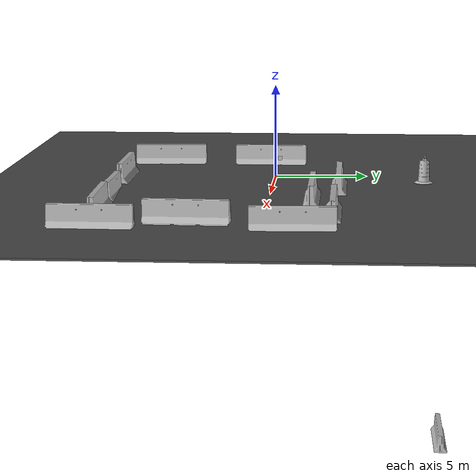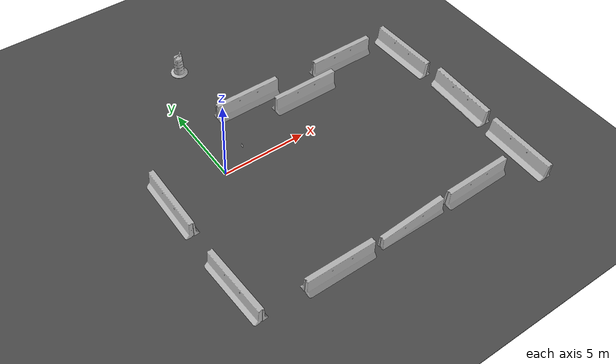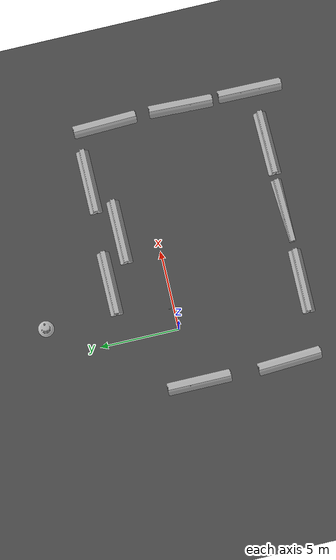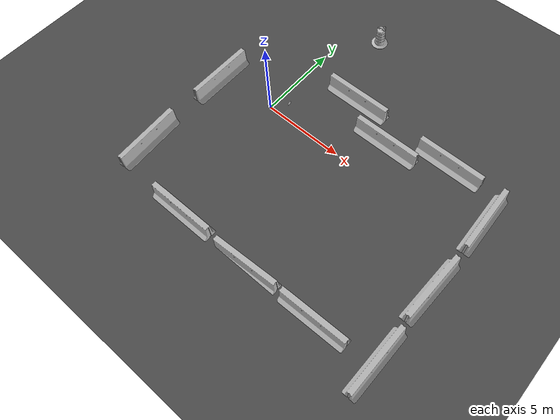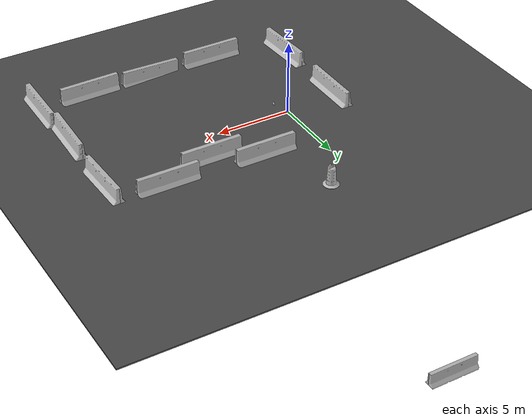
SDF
<sdf version="1.4">
 <world name="default">
  <light name="sun" type="directional">
   <pose>0 0 10 0 -0 0</pose>
   <diffuse>0.8 0.8 0.8 1</diffuse>
   <specular>0.2 0.2 0.2 1</specular>
   <attenuation>
    <range>1000</range>
    <constant>0.9</constant>
    <linear>0.01</linear>
    <quadratic>0.001</quadratic>
   </attenuation>
   <direction>-0.5 0.1 -0.9</direction>
  </light>
  <model name="ground_plane">
   <static>1</static>
   <link name="link">
    <collision name="collision">
     <geometry><plane><normal>0 0 1</normal><size>100 100</size></plane></geometry>
     <surface><friction><ode><mu>100</mu><mu2>50</mu2></ode></friction></surface>
    </collision>
    <visual name="visual">
     <cast_shadows>0</cast_shadows>
     <geometry><plane><normal>0 0 1</normal><size>100 100</size></plane></geometry>
     <material>
      <script><uri>file://media/materials/scripts/gazebo.material</uri><name>Gazebo/Grey</name></script>
     </material>
    </visual>
    <velocity_decay><linear>0</linear><angular>0</angular></velocity_decay>
   </link>
  </model>
  <physics type="ode">
   <max_step_size>0.01</max_step_size>
   <real_time_factor>1</real_time_factor>
   <real_time_update_rate>100</real_time_update_rate>
   <gravity>0 0 -9.8</gravity>
  </physics>
  <scene><ambient>0.4 0.4 0.4 1</ambient><background>0.7 0.7 0.7 1</background><shadows>1</shadows></scene>
  <model name="jersey_barrier_0">
   <static>1</static>
   <link name="link">
    <visual name="visual">
     <geometry><mesh><uri>model://jersey_barrier/meshes/jersey_barrier.dae</uri></mesh></geometry>
    </visual>
    <collision name="upright">
     <pose>0 0 0.5715 0 -0 0</pose>
     <geometry><box><size>4.06542 0.3063 1.143</size></box></geometry>
    </collision>
    <collision name="base">
     <pose>0 0 0.032258 0 -0 0</pose>
     <geometry><box><size>4.06542 0.8107 0.064516</size></box></geometry>
    </collision>
    <collision name="base2">
     <pose>0 0 0.1 0 -0 0</pose>
     <geometry><box><size>4.06542 0.65 0.1</size></box></geometry>
    </collision>
    <collision name="base3">
     <pose>0 0 0.2 0 -0 0</pose>
     <geometry><box><size>4.06542 0.5 0.1</size></box></geometry>
    </collision>
    <collision name="left-angle">
     <pose>0 -0.224 0.2401 0.9 -0 0</pose>
     <geometry><box><size>4.06542 0.5 0.064516</size></box></geometry>
    </collision>
    <collision name="right-angle">
     <pose>0 0.224 0.2401 -0.9 0 0</pose>
     <geometry><box><size>4.06542 0.5 0.064516</size></box></geometry>
    </collision>
    <velocity_decay><linear>0</linear><angular>0</angular></velocity_decay>
   </link>
   <pose>-3.54929 -0.475398 0 0 -0 1.571</pose>
  </model>
  <model name="jersey_barrier_2">
   <static>1</static>
   <link name="link">
    <visual name="visual">
     <geometry><mesh><uri>model://jersey_barrier/meshes/jersey_barrier.dae</uri></mesh></geometry>
    </visual>
    <collision name="upright">
     <pose>0 0 0.5715 0 -0 0</pose>
     <geometry><box><size>4.06542 0.3063 1.143</size></box></geometry>
    </collision>
    <collision name="base">
     <pose>0 0 0.032258 0 -0 0</pose>
     <geometry><box><size>4.06542 0.8107 0.064516</size></box></geometry>
    </collision>
    <collision name="base2">
     <pose>0 0 0.1 0 -0 0</pose>
     <geometry><box><size>4.06542 0.65 0.1</size></box></geometry>
    </collision>
    <collision name="base3">
     <pose>0 0 0.2 0 -0 0</pose>
     <geometry><box><size>4.06542 0.5 0.1</size></box></geometry>
    </collision>
    <collision name="left-angle">
     <pose>0 -0.224 0.2401 0.9 -0 0</pose>
     <geometry><box><size>4.06542 0.5 0.064516</size></box></geometry>
    </collision>
    <collision name="right-angle">
     <pose>0 0.224 0.2401 -0.9 0 0</pose>
     <geometry><box><size>4.06542 0.5 0.064516</size></box></geometry>
    </collision>
    <velocity_decay><linear>0</linear><angular>0</angular></velocity_decay>
   </link>
   <pose>1.16128 -8.17812 0 0 -0 0</pose>
  </model>
  <model name="jersey_barrier_3">
   <static>1</static>
   <link name="link">
    <visual name="visual">
     <geometry><mesh><uri>model://jersey_barrier/meshes/jersey_barrier.dae</uri></mesh></geometry>
    </visual>
    <collision name="upright">
     <pose>0 0 0.5715 0 -0 0</pose>
     <geometry><box><size>4.06542 0.3063 1.143</size></box></geometry>
    </collision>
    <collision name="base">
     <pose>0 0 0.032258 0 -0 0</pose>
     <geometry><box><size>4.06542 0.8107 0.064516</size></box></geometry>
    </collision>
    <collision name="base2">
     <pose>0 0 0.1 0 -0 0</pose>
     <geometry><box><size>4.06542 0.65 0.1</size></box></geometry>
    </collision>
    <collision name="base3">
     <pose>0 0 0.2 0 -0 0</pose>
     <geometry><box><size>4.06542 0.5 0.1</size></box></geometry>
    </collision>
    <collision name="left-angle">
     <pose>0 -0.224 0.2401 0.9 -0 0</pose>
     <geometry><box><size>4.06542 0.5 0.064516</size></box></geometry>
    </collision>
    <collision name="right-angle">
     <pose>0 0.224 0.2401 -0.9 0 0</pose>
     <geometry><box><size>4.06542 0.5 0.064516</size></box></geometry>
    </collision>
    <velocity_decay><linear>0</linear><angular>0</angular></velocity_decay>
   </link>
   <pose>-7.50675 10 -18.549 0 -0 0</pose>
  </model>
  <model name="jersey_barrier_5">
   <static>1</static>
   <link name="link">
    <visual name="visual">
     <geometry><mesh><uri>model://jersey_barrier/meshes/jersey_barrier.dae</uri></mesh></geometry>
    </visual>
    <collision name="upright">
     <pose>0 0 0.5715 0 -0 0</pose>
     <geometry><box><size>4.06542 0.3063 1.143</size></box></geometry>
    </collision>
    <collision name="base">
     <pose>0 0 0.032258 0 -0 0</pose>
     <geometry><box><size>4.06542 0.8107 0.064516</size></box></geometry>
    </collision>
    <collision name="base2">
     <pose>0 0 0.1 0 -0 0</pose>
     <geometry><box><size>4.06542 0.65 0.1</size></box></geometry>
    </collision>
    <collision name="base3">
     <pose>0 0 0.2 0 -0 0</pose>
     <geometry><box><size>4.06542 0.5 0.1</size></box></geometry>
    </collision>
    <collision name="left-angle">
     <pose>0 -0.224 0.2401 0.9 -0 0</pose>
     <geometry><box><size>4.06542 0.5 0.064516</size></box></geometry>
    </collision>
    <collision name="right-angle">
     <pose>0 0.224 0.2401 -0.9 0 0</pose>
     <geometry><box><size>4.06542 0.5 0.064516</size></box></geometry>
    </collision>
    <velocity_decay><linear>0</linear><angular>0</angular></velocity_decay>
   </link>
   <pose>3.74537 3.55609 0 0 -0 0</pose>
  </model>
  <model name="jersey_barrier_6">
   <static>1</static>
   <link name="link">
    <visual name="visual">
     <geometry><mesh><uri>model://jersey_barrier/meshes/jersey_barrier.dae</uri></mesh></geometry>
    </visual>
    <collision name="upright">
     <pose>0 0 0.5715 0 -0 0</pose>
     <geometry><box><size>4.06542 0.3063 1.143</size></box></geometry>
    </collision>
    <collision name="base">
     <pose>0 0 0.032258 0 -0 0</pose>
     <geometry><box><size>4.06542 0.8107 0.064516</size></box></geometry>
    </collision>
    <collision name="base2">
     <pose>0 0 0.1 0 -0 0</pose>
     <geometry><box><size>4.06542 0.65 0.1</size></box></geometry>
    </collision>
    <collision name="base3">
     <pose>0 0 0.2 0 -0 0</pose>
     <geometry><box><size>4.06542 0.5 0.1</size></box></geometry>
    </collision>
    <collision name="left-angle">
     <pose>0 -0.224 0.2401 0.9 -0 0</pose>
     <geometry><box><size>4.06542 0.5 0.064516</size></box></geometry>
    </collision>
    <collision name="right-angle">
     <pose>0 0.224 0.2401 -0.9 0 0</pose>
     <geometry><box><size>4.06542 0.5 0.064516</size></box></geometry>
    </collision>
    <velocity_decay><linear>0</linear><angular>0</angular></velocity_decay>
   </link>
   <pose>6.77744 2.22219 0 0 -0 0</pose>
  </model>
  <model name="jersey_barrier_7">
   <static>1</static>
   <link name="link">
    <visual name="visual">
     <geometry><mesh><uri>model://jersey_barrier/meshes/jersey_barrier.dae</uri></mesh></geometry>
    </visual>
    <collision name="upright">
     <pose>0 0 0.5715 0 -0 0</pose>
     <geometry><box><size>4.06542 0.3063 1.143</size></box></geometry>
    </collision>
    <collision name="base">
     <pose>0 0 0.032258 0 -0 0</pose>
     <geometry><box><size>4.06542 0.8107 0.064516</size></box></geometry>
    </collision>
    <collision name="base2">
     <pose>0 0 0.1 0 -0 0</pose>
     <geometry><box><size>4.06542 0.65 0.1</size></box></geometry>
    </collision>
    <collision name="base3">
     <pose>0 0 0.2 0 -0 0</pose>
     <geometry><box><size>4.06542 0.5 0.1</size></box></geometry>
    </collision>
    <collision name="left-angle">
     <pose>0 -0.224 0.2401 0.9 -0 0</pose>
     <geometry><box><size>4.06542 0.5 0.064516</size></box></geometry>
    </collision>
    <collision name="right-angle">
     <pose>0 0.224 0.2401 -0.9 0 0</pose>
     <geometry><box><size>4.06542 0.5 0.064516</size></box></geometry>
    </collision>
    <velocity_decay><linear>0</linear><angular>0</angular></velocity_decay>
   </link>
   <pose>5.7515 -8.14525 -0.192353 -0.001534 0.044511 -3.10683</pose>
  </model>
  <model name="jersey_barrier_9">
   <static>1</static>
   <link name="link">
    <visual name="visual">
     <geometry><mesh><uri>model://jersey_barrier/meshes/jersey_barrier.dae</uri></mesh></geometry>
    </visual>
    <collision name="upright">
     <pose>0 0 0.5715 0 -0 0</pose>
     <geometry><box><size>4.06542 0.3063 1.143</size></box></geometry>
    </collision>
    <collision name="base">
     <pose>0 0 0.032258 0 -0 0</pose>
     <geometry><box><size>4.06542 0.8107 0.064516</size></box></geometry>
    </collision>
    <collision name="base2">
     <pose>0 0 0.1 0 -0 0</pose>
     <geometry><box><size>4.06542 0.65 0.1</size></box></geometry>
    </collision>
    <collision name="base3">
     <pose>0 0 0.2 0 -0 0</pose>
     <geometry><box><size>4.06542 0.5 0.1</size></box></geometry>
    </collision>
    <collision name="left-angle">
     <pose>0 -0.224 0.2401 0.9 -0 0</pose>
     <geometry><box><size>4.06542 0.5 0.064516</size></box></geometry>
    </collision>
    <collision name="right-angle">
     <pose>0 0.224 0.2401 -0.9 0 0</pose>
     <geometry><box><size>4.06542 0.5 0.064516</size></box></geometry>
    </collision>
    <velocity_decay><linear>0</linear><angular>0</angular></velocity_decay>
   </link>
   <pose>-3.52432 -6.28249 0 0 0 -1.517</pose>
  </model>
  <model name="jersey_barrier_12">
   <static>1</static>
   <link name="link">
    <visual name="visual">
     <geometry><mesh><uri>model://jersey_barrier/meshes/jersey_barrier.dae</uri></mesh></geometry>
    </visual>
    <collision name="upright">
     <pose>0 0 0.5715 0 -0 0</pose>
     <geometry><box><size>4.06542 0.3063 1.143</size></box></geometry>
    </collision>
    <collision name="base">
     <pose>0 0 0.032258 0 -0 0</pose>
     <geometry><box><size>4.06542 0.8107 0.064516</size></box></geometry>
    </collision>
    <collision name="base2">
     <pose>0 0 0.1 0 -0 0</pose>
     <geometry><box><size>4.06542 0.65 0.1</size></box></geometry>
    </collision>
    <collision name="base3">
     <pose>0 0 0.2 0 -0 0</pose>
     <geometry><box><size>4.06542 0.5 0.1</size></box></geometry>
    </collision>
    <collision name="left-angle">
     <pose>0 -0.224 0.2401 0.9 -0 0</pose>
     <geometry><box><size>4.06542 0.5 0.064516</size></box></geometry>
    </collision>
    <collision name="right-angle">
     <pose>0 0.224 0.2401 -0.9 0 0</pose>
     <geometry><box><size>4.06542 0.5 0.064516</size></box></geometry>
    </collision>
    <velocity_decay><linear>0</linear><angular>0</angular></velocity_decay>
   </link>
   <pose>13.691 -7.77633 0 0 -0 1.56</pose>
  </model>
  <model name="jersey_barrier_13">
   <static>1</static>
   <link name="link">
    <visual name="visual">
     <geometry><mesh><uri>model://jersey_barrier/meshes/jersey_barrier.dae</uri></mesh></geometry>
    </visual>
    <collision name="upright">
     <pose>0 0 0.5715 0 -0 0</pose>
     <geometry><box><size>4.06542 0.3063 1.143</size></box></geometry>
    </collision>
    <collision name="base">
     <pose>0 0 0.032258 0 -0 0</pose>
     <geometry><box><size>4.06542 0.8107 0.064516</size></box></geometry>
    </collision>
    <collision name="base2">
     <pose>0 0 0.1 0 -0 0</pose>
     <geometry><box><size>4.06542 0.65 0.1</size></box></geometry>
    </collision>
    <collision name="base3">
     <pose>0 0 0.2 0 -0 0</pose>
     <geometry><box><size>4.06542 0.5 0.1</size></box></geometry>
    </collision>
    <collision name="left-angle">
     <pose>0 -0.224 0.2401 0.9 -0 0</pose>
     <geometry><box><size>4.06542 0.5 0.064516</size></box></geometry>
    </collision>
    <collision name="right-angle">
     <pose>0 0.224 0.2401 -0.9 0 0</pose>
     <geometry><box><size>4.06542 0.5 0.064516</size></box></geometry>
    </collision>
    <velocity_decay><linear>0</linear><angular>0</angular></velocity_decay>
   </link>
   <pose>10.1334 -8.08249 0 0 -0 0.019647</pose>
  </model>
  <model name="asphalt_plane">
   <static>1</static>
   <link name="link">
    <collision name="collision"><geometry><box><size>100 100 0.1</size></box></geometry></collision>
    <visual name="visual">
     <cast_shadows>0</cast_shadows>
     <geometry><box><size>100 100 0.1</size></box></geometry>
     <material>
      <script>
       <uri>model://asphalt_plane/materials/scripts</uri>
       <uri>model://asphalt_plane/materials/textures</uri>
       <name>vrc/asphalt</name>
      </script>
     </material>
    </visual>
    <velocity_decay><linear>0</linear><angular>0</angular></velocity_decay>
   </link>
   <pose>5.36478 -3.27412 0 0 -0 0</pose>
  </model>
  <model name="Construction Barrel_6">
   <link name="link">
    <inertial>
     <pose>0 0 0.4 0 -0 0</pose>
     <mass>500</mass>
     <inertia><ixx>51.2096</ixx><iyy>51.2096</iyy><izz>25</izz><ixy>0</ixy><ixz>0</ixz><iyz>0</iyz></inertia>
    </inertial>
    <collision name="collision">
     <geometry><mesh><uri>model://construction_barrel/meshes/construction_barrel.dae</uri></mesh></geometry>
    </collision>
    <visual name="visual">
     <geometry><mesh><uri>model://construction_barrel/meshes/construction_barrel.dae</uri></mesh></geometry>
    </visual>
    <velocity_decay><linear>0</linear><angular>0</angular></velocity_decay>
   </link>
   <pose>1.90606 8.08834 0.049943 -0.000112 -0.000261 0.210122</pose>
   <static>0</static>
  </model>
  <spherical_coordinates>
   <surface_model>EARTH_WGS84</surface_model>
   <latitude_deg>0</latitude_deg>
   <longitude_deg>0</longitude_deg>
   <elevation>0</elevation>
   <heading_deg>0</heading_deg>
  </spherical_coordinates>
  <model name="jersey_barrier_15">
   <static>1</static>
   <link name="link">
    <visual name="visual">
     <geometry><mesh><uri>model://jersey_barrier/meshes/jersey_barrier.dae</uri></mesh></geometry>
    </visual>
    <collision name="upright">
     <pose>0 0 0.5715 0 -0 0</pose>
     <geometry><box><size>4.06542 0.3063 1.143</size></box></geometry>
    </collision>
    <collision name="base">
     <pose>0 0 0.032258 0 -0 0</pose>
     <geometry><box><size>4.06542 0.8107 0.064516</size></box></geometry>
    </collision>
    <collision name="base2">
     <pose>0 0 0.1 0 -0 0</pose>
     <geometry><box><size>4.06542 0.65 0.1</size></box></geometry>
    </collision>
    <collision name="base3">
     <pose>0 0 0.2 0 -0 0</pose>
     <geometry><box><size>4.06542 0.5 0.1</size></box></geometry>
    </collision>
    <collision name="left-angle">
     <pose>0 -0.224 0.2401 0.9 -0 0</pose>
     <geometry><box><size>4.06542 0.5 0.064516</size></box></geometry>
    </collision>
    <collision name="right-angle">
     <pose>0 0.224 0.2401 -0.9 0 0</pose>
     <geometry><box><size>4.06542 0.5 0.064516</size></box></geometry>
    </collision>
    <velocity_decay><linear>0</linear><angular>0</angular></velocity_decay>
   </link>
   <pose>10.2981 3.36118 0 0 -0 0</pose>
  </model>
  <model name="jersey_barrier_16">
   <static>1</static>
   <link name="link">
    <visual name="visual">
     <geometry><mesh><uri>model://jersey_barrier/meshes/jersey_barrier.dae</uri></mesh></geometry>
    </visual>
    <collision name="upright">
     <pose>0 0 0.5715 0 -0 0</pose>
     <geometry><box><size>4.06542 0.3063 1.143</size></box></geometry>
    </collision>
    <collision name="base">
     <pose>0 0 0.032258 0 -0 0</pose>
     <geometry><box><size>4.06542 0.8107 0.064516</size></box></geometry>
    </collision>
    <collision name="base2">
     <pose>0 0 0.1 0 -0 0</pose>
     <geometry><box><size>4.06542 0.65 0.1</size></box></geometry>
    </collision>
    <collision name="base3">
     <pose>0 0 0.2 0 -0 0</pose>
     <geometry><box><size>4.06542 0.5 0.1</size></box></geometry>
    </collision>
    <collision name="left-angle">
     <pose>0 -0.224 0.2401 0.9 -0 0</pose>
     <geometry><box><size>4.06542 0.5 0.064516</size></box></geometry>
    </collision>
    <collision name="right-angle">
     <pose>0 0.224 0.2401 -0.9 0 0</pose>
     <geometry><box><size>4.06542 0.5 0.064516</size></box></geometry>
    </collision>
    <velocity_decay><linear>0</linear><angular>0</angular></velocity_decay>
   </link>
   <pose>13.6677 -3.31998 0.268403 0 -0 1.53719</pose>
  </model>
  <model name="jersey_barrier_19">
   <static>1</static>
   <link name="link">
    <visual name="visual">
     <geometry><mesh><uri>model://jersey_barrier/meshes/jersey_barrier.dae</uri></mesh></geometry>
    </visual>
    <collision name="upright">
     <pose>0 0 0.5715 0 -0 0</pose>
     <geometry><box><size>4.06542 0.3063 1.143</size></box></geometry>
    </collision>
    <collision name="base">
     <pose>0 0 0.032258 0 -0 0</pose>
     <geometry><box><size>4.06542 0.8107 0.064516</size></box></geometry>
    </collision>
    <collision name="base2">
     <pose>0 0 0.1 0 -0 0</pose>
     <geometry><box><size>4.06542 0.65 0.1</size></box></geometry>
    </collision>
    <collision name="base3">
     <pose>0 0 0.2 0 -0 0</pose>
     <geometry><box><size>4.06542 0.5 0.1</size></box></geometry>
    </collision>
    <collision name="left-angle">
     <pose>0 -0.224 0.2401 0.9 -0 0</pose>
     <geometry><box><size>4.06542 0.5 0.064516</size></box></geometry>
    </collision>
    <collision name="right-angle">
     <pose>0 0.224 0.2401 -0.9 0 0</pose>
     <geometry><box><size>4.06542 0.5 0.064516</size></box></geometry>
    </collision>
    <velocity_decay><linear>0</linear><angular>0</angular></velocity_decay>
   </link>
   <pose>13.6632 1.57566 0 0 0 -1.53782</pose>
  </model>
  <model name="april_box_36h11">
   <static>1</static>
   <link name="chassis">
    <collision name="collision"><geometry><box><size>0.001 0.216875 0.216875</size></box></geometry></collision>
    <visual name="visual">
     <geometry>
      <mesh>
       <uri>model://april_box_36h11/meshes/april_box_36h11.dae</uri>
       <scale>0.001 0.216875 0.216875</scale>
      </mesh>
     </geometry>
    </visual>
    <velocity_decay><linear>0</linear><angular>0</angular></velocity_decay>
   </link>
   <pose>1.25 0.3 1.2 0 -0 0</pose>
  </model>
 </world>
</sdf>
